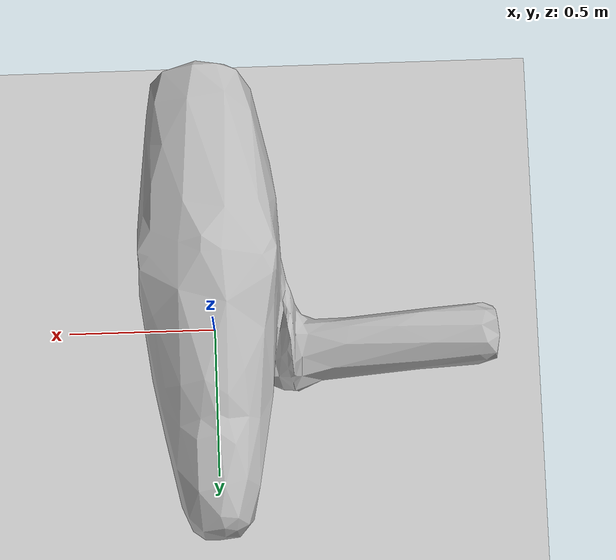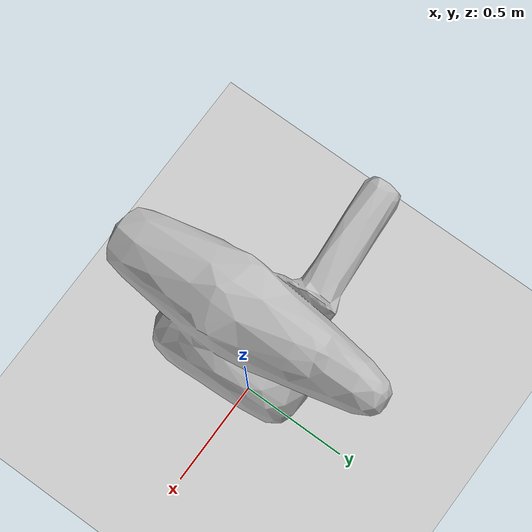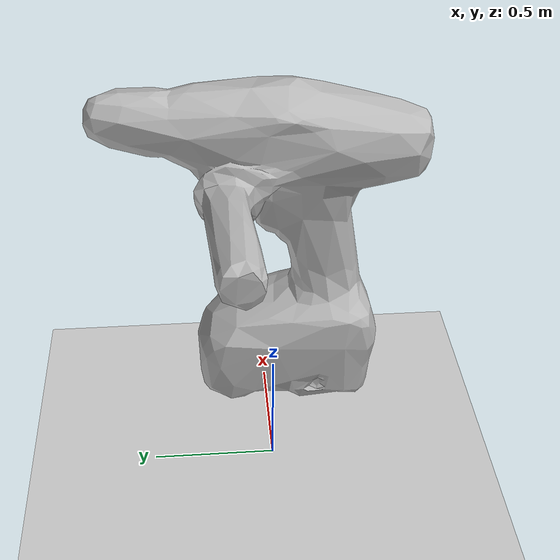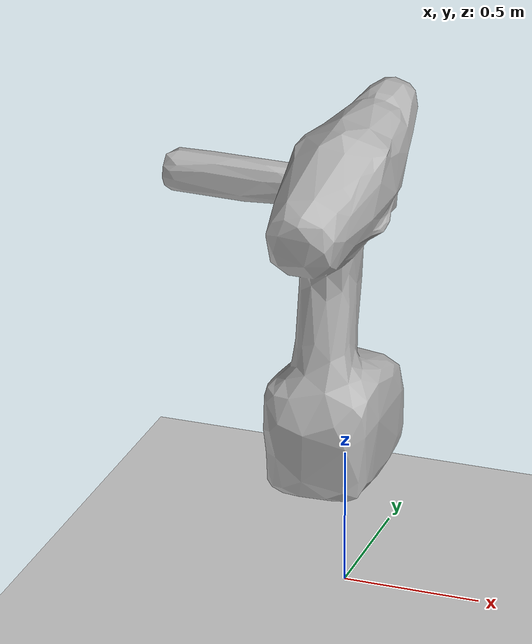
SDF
<?xml version="1.0" ?>
<sdf version="1.6">
  <world name="default">
    <!-- A global light source -->
    <include>
      <uri>model://sun</uri>
    </include>
    <!-- A ground plane -->
    <include>
      <uri>model://ground_plane</uri>
    </include>

    <!-- A large cordless drill mesh for view control testing -->
    <model name="drill">
      <static>true</static>
      <link name="link">
        <collision name="collision">
          <pose>0 0 0.0 0 0 0</pose>
          <geometry>
            <mesh>
              <uri>model://cordless_drill/meshes/cordless_drill.stl</uri>
              <scale>5 5 5</scale>
            </mesh>
          </geometry>
        </collision>
        <visual name="visual">
          <pose>0 0 0.0 0 0 0</pose>
          <geometry>
            <mesh>
              <uri>model://cordless_drill/meshes/cordless_drill.dae</uri>
              <scale>5 5 5</scale>
            </mesh>
          </geometry>
        </visual>
      </link>
    </model>

  </world>
</sdf>
